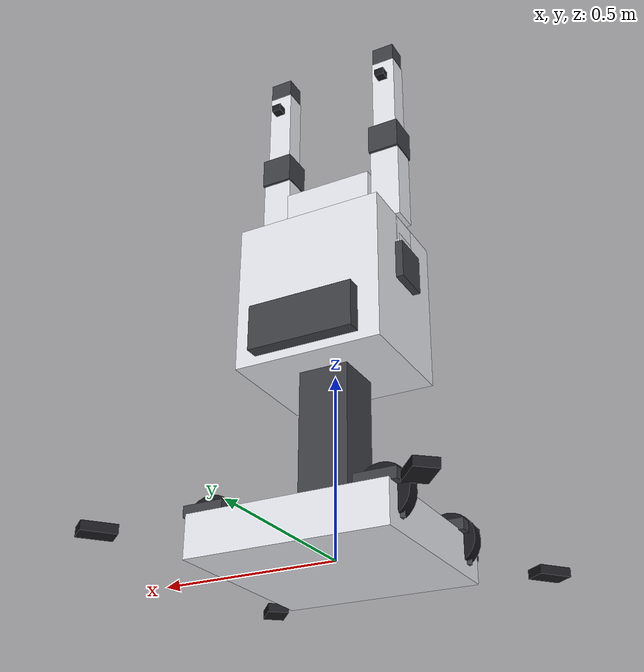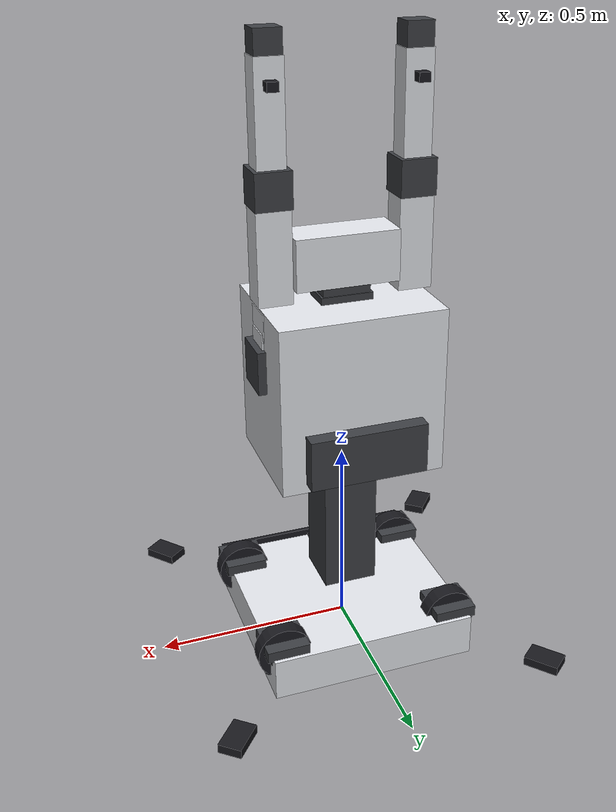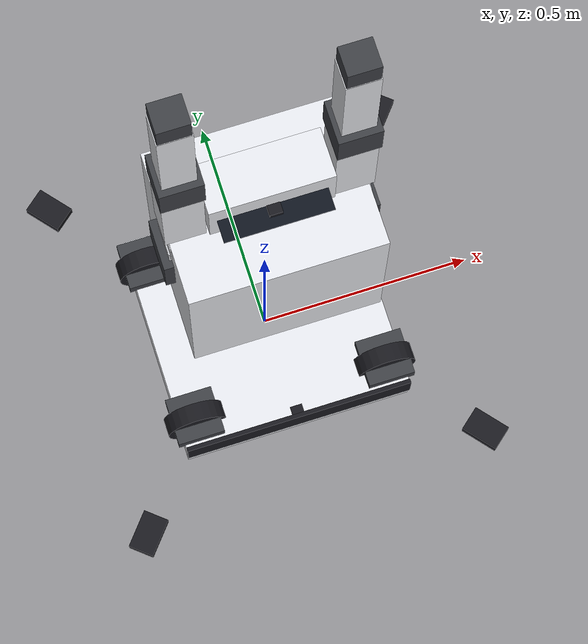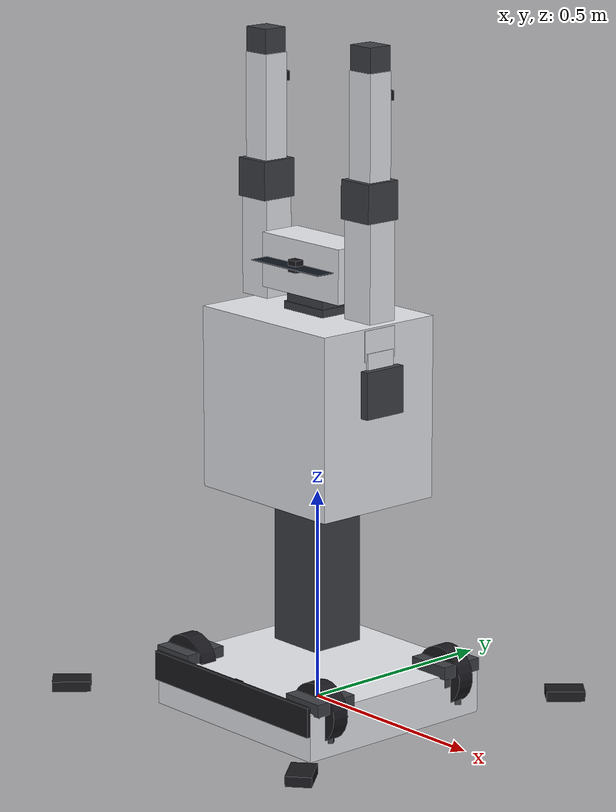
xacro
<?xml version="1.0"?>
<robot xmlns:xacro="http://www.ros.org/wiki/xacro" name="workbench_revision_d">

  <!-- ====================================================== swap-surface args -->
  <xacro:arg name="sim_gz" default="false"/>
  <xacro:arg name="controllers_yaml" default="revision_d_controllers.yaml"/>
  <xacro:arg name="stabilizers_deployed" default="false"/>
  <xacro:arg name="lift_extension" default="0.0"/>
  <xacro:arg name="ros2_control_xacro" default="revision_d_ros2_control.xacro"/>
  <xacro:arg name="sensors" default="false"/>

  <!-- Args are referenced as $(arg ...) and are not in scope as bare names, so
       the boolean the conditional needs is bound once here. -->
  <xacro:property name="sim_gz" value="$(arg sim_gz)"/>
  <xacro:property name="sensors" value="$(arg sensors)"/>

  <!-- ============================================== design-spec.json anchors -->
  <!-- hardware/mechanical/design-spec.json, converted mm -> m. The comment on
       each line is the JSON pointer the number comes from. -->

  <!-- chassis {width, depth, thickness}, ground_clearance -->
  <xacro:property name="chassis_x"        value="0.540"/>
  <xacro:property name="chassis_y"        value="0.520"/>
  <xacro:property name="chassis_plate"    value="0.006"/>
  <xacro:property name="ground_clearance" value="0.028"/>
  <!-- coordinate_system.base_top_z_mm = 140 -->
  <xacro:property name="base_top_z"       value="0.140"/>

  <!-- chassis {wheelbase, track, wheel_diameter_mm, wheel_width_mm, drive_module_count} -->
  <xacro:property name="wheelbase"        value="0.390"/>
  <xacro:property name="track"            value="0.460"/>
  <xacro:property name="wheel_radius"     value="0.070"/>
  <xacro:property name="wheel_width"      value="0.042"/>
  <!-- Four steer-drive modules, so the four corners are the module positions. -->
  <xacro:property name="module_x"         value="${track / 2.0}"/>
  <xacro:property name="module_y"         value="${wheelbase / 2.0}"/>
  <xacro:property name="steer_drop"       value="0.020"/>
  <xacro:property name="wheel_drop"       value="0.005"/>
  <xacro:property name="module_mount_z"
                value="${wheel_radius - ground_clearance + steer_drop + wheel_drop}"/>

  <!-- stability_analysis.support_polygons.stabilized.vertices_mm = +/-410 -->
  <xacro:property name="stabilized_half"  value="0.410"/>
  <!-- Derived stroke from the corner mount to the documented vertex. One number
       instead of four so the deployed pad lands on the documented polygon. -->
  <xacro:property name="stabilizer_reach_x" value="${stabilized_half - module_x}"/>
  <xacro:property name="stabilizer_reach_y" value="${stabilized_half - module_y}"/>
  <xacro:property name="stabilizer_stroke"
                value="${(stabilizer_reach_x**2 + stabilizer_reach_y**2) ** 0.5}"/>
  <xacro:property name="stabilizer_pad"   value="0.090"/>

  <!-- lifting_platform {travel, minimum_shoulder_height, maximum_shoulder_height} -->
  <xacro:property name="lift_travel"      value="0.350"/>
  <xacro:property name="shoulder_min_z"   value="0.780"/>
  <xacro:property name="shoulder_max_z"   value="1.130"/>

  <!-- coordinate_system.torso_bottom_stowed_z_mm = 500 -->
  <xacro:property name="torso_bottom_z"   value="0.500"/>
  <!-- torso {width, depth, height} -->
  <xacro:property name="torso_x"          value="0.420"/>
  <xacro:property name="torso_y"          value="0.330"/>
  <xacro:property name="torso_z"          value="0.430"/>

  <!-- coordinate_system.head_top_stowed_z_mm = 1100 -->
  <xacro:property name="head_top_stowed_z" value="1.100"/>
  <!-- head {height} -->
  <xacro:property name="head_z"            value="0.128"/>
  <xacro:property name="head_x"            value="0.260"/>
  <xacro:property name="head_y"            value="0.105"/>
  <xacro:property name="neck_standoff"
                value="${head_top_stowed_z - head_z - (torso_bottom_z + torso_z)}"/>
  <!-- head {pan_deg, tilt_deg} -->
  <xacro:property name="neck_pan_limit"    value="${radians(80.0)}"/>
  <xacro:property name="neck_tilt_limit"   value="${radians(3.0)}"/>

  <!-- shoulder_mounts.center_spacing_mm = 352 -->
  <xacro:property name="shoulder_spacing" value="0.352"/>

  <!-- manipulator {reach_mm, links_mm, joints} -->
  <xacro:property name="arm_reach"        value="0.720"/>
  <xacro:property name="upper_arm_length" value="0.275"/>
  <xacro:property name="forearm_length"   value="0.245"/>
  <xacro:property name="wrist_stack"      value="0.115"/>
  <xacro:property name="shoulder_yoke"    value="0.110"/>
  <xacro:property name="elbow_block"      value="0.090"/>

  <!-- torso.tool_dock_slots = 3 -->
  <xacro:property name="tool_dock_slots"  value="3"/>
  <xacro:property name="tool_dock_pitch"  value="0.090"/>

  <!-- ============================================================== materials -->
  <material name="rd_shell">  <color rgba="0.90 0.91 0.93 1.0"/></material>
  <material name="rd_graphite"><color rgba="0.24 0.25 0.27 1.0"/></material>
  <material name="rd_dark">   <color rgba="0.10 0.10 0.12 1.0"/></material>
  <material name="rd_glass">  <color rgba="0.06 0.08 0.12 1.0"/></material>

  <!-- =============================================================== macros -->
  <!-- Inertia for a solid box about its centre, written out rather than
       approximated: a wrong tensor makes contact behaviour subtly wrong and
       then tuning chases the wrong parameter. -->
  <xacro:macro name="rd_box_inertia" params="m x y z">
    <inertial>
      <mass value="${m}"/>
      <inertia
        ixx="${m * (y*y + z*z) / 12.0}" ixy="0.0" ixz="0.0"
        iyy="${m * (x*x + z*z) / 12.0}" iyz="0.0"
        izz="${m * (x*x + y*y) / 12.0}"/>
    </inertial>
  </xacro:macro>

  <!-- Solid cylinder whose axis is the link's local Z. -->
  <xacro:macro name="rd_cylinder_inertia" params="m r h">
    <inertial>
      <mass value="${m}"/>
      <inertia
        ixx="${m * (3.0*r*r + h*h) / 12.0}" ixy="0.0" ixz="0.0"
        iyy="${m * (3.0*r*r + h*h) / 12.0}" iyz="0.0"
        izz="${m * r*r / 2.0}"/>
    </inertial>
  </xacro:macro>

  <xacro:macro name="rd_box_link" params="name x y z mat mass">
    <link name="${name}">
      <visual>
        <geometry><box size="${x} ${y} ${z}"/></geometry>
        <material name="${mat}"/>
      </visual>
      <collision>
        <geometry><box size="${x} ${y} ${z}"/></geometry>
      </collision>
      <xacro:rd_box_inertia m="${mass}" x="${x}" y="${y}" z="${z}"/>
    </link>
  </xacro:macro>

  <!-- Visual + collision cylinder, axis along the link's local Z. -->
  <xacro:macro name="rd_cylinder_link" params="name r h mat mass">
    <link name="${name}">
      <visual>
        <geometry><cylinder radius="${r}" length="${h}"/></geometry>
        <material name="${mat}"/>
      </visual>
      <collision>
        <geometry><cylinder radius="${r}" length="${h}"/></geometry>
      </collision>
      <xacro:rd_cylinder_inertia m="${mass}" r="${r}" h="${h}"/>
    </link>
  </xacro:macro>

  <!-- REP-103 optical convention: z forward, x right, y down. Publishing from a
       body frame instead gives a silent 90 degree error that still renders. -->
  <xacro:macro name="rd_optical_frame" params="parent name">
    <link name="${name}"/>
    <joint name="${parent}_to_${name}" type="fixed">
      <parent link="${parent}"/>
      <child  link="${name}"/>
      <origin xyz="0 0 0" rpy="${radians(-90.0)} 0 ${radians(-90.0)}"/>
    </joint>
  </xacro:macro>

  <xacro:macro name="rd_camera" params="parent name xyz rpy">
    <xacro:rd_box_link name="${name}_body" x="0.028" y="0.028" z="0.022"
                       mat="rd_dark" mass="0.040"/>
    <joint name="${parent}_to_${name}_body" type="fixed">
      <parent link="${parent}"/>
      <child  link="${name}_body"/>
      <origin xyz="${xyz}" rpy="${rpy}"/>
    </joint>
    <xacro:rd_optical_frame parent="${name}_body" name="${name}_optical"/>
  </xacro:macro>

  <xacro:macro name="rd_seven_axis_arm" params="side sign">
    <xacro:property name="arm" value="arm_${side}"/>

    <!-- The yoke bolts into the upper torso side wall and into the
         lift-supported spine, never the cosmetic shell. -->
    <xacro:rd_box_link name="${arm}_shoulder_yoke" x="${shoulder_yoke}" y="${shoulder_yoke}"
                       z="${shoulder_yoke}" mat="rd_graphite" mass="2.20"/>
    <joint name="${arm}_mount" type="fixed">
      <parent link="lift_carriage"/>
      <child  link="${arm}_shoulder_yoke"/>
      <origin xyz="${sign * shoulder_spacing / 2.0} 0 0" rpy="0 0 0"/>
    </joint>

    <!-- J1 base_yaw, axis Z, limits_deg [-170, 170] -->
    <xacro:rd_box_link name="${arm}_link_1_base_yaw" x="0.100" y="0.100" z="0.086"
                       mat="rd_graphite" mass="2.60"/>
    <joint name="${arm}_joint_1_base_yaw" type="revolute">
      <parent link="${arm}_shoulder_yoke"/>
      <child  link="${arm}_link_1_base_yaw"/>
      <axis xyz="0 0 1"/>
      <!-- effort is the documented peak torque; the continuous rating is in README.md -->
      <limit effort="90.0" velocity="2.10" lower="${radians(-170.0)}" upper="${radians(170.0)}"/>
    </joint>

    <!-- J2 shoulder_pitch, axis Y, limits_deg [-90, 120] -->
    <xacro:rd_box_link name="${arm}_link_2_shoulder_pitch" x="0.078" y="0.078" z="0.070"
                       mat="rd_shell" mass="2.10"/>
    <joint name="${arm}_joint_2_shoulder_pitch" type="revolute">
      <parent link="${arm}_link_1_base_yaw"/>
      <child  link="${arm}_link_2_shoulder_pitch"/>
      <axis xyz="0 1 0"/>
      <origin xyz="0 0 0.058" rpy="0 0 0"/>
      <limit effort="130.0" velocity="2.10" lower="${radians(-90.0)}" upper="${radians(120.0)}"/>
    </joint>

    <!-- J3 shoulder_roll, axis X, limits_deg [-95, 95] -->
    <xacro:rd_box_link name="${arm}_link_3_shoulder_roll" x="0.072" y="0.090" z="0.072"
                       mat="rd_shell" mass="1.70"/>
    <joint name="${arm}_joint_3_shoulder_roll" type="revolute">
      <parent link="${arm}_link_2_shoulder_pitch"/>
      <child  link="${arm}_link_3_shoulder_roll"/>
      <axis xyz="1 0 0"/>
      <origin xyz="0 0 0.052" rpy="0 0 0"/>
      <limit effort="85.0" velocity="2.10" lower="${radians(-95.0)}" upper="${radians(95.0)}"/>
    </joint>

    <!-- J4 elbow_pitch, axis Y, limits_deg [-135, 10]. links_mm.upper_arm = 275
         is the distance this joint sits from the shoulder roll axis. -->
    <link name="${arm}_link_4_upper_arm">
      <visual>
        <origin xyz="0 0 ${upper_arm_length / 2.0}" rpy="0 0 0"/>
        <geometry><box size="0.086 0.074 ${upper_arm_length}"/></geometry>
        <material name="rd_shell"/>
      </visual>
      <collision>
        <origin xyz="0 0 ${upper_arm_length / 2.0}" rpy="0 0 0"/>
        <geometry><box size="0.086 0.074 ${upper_arm_length}"/></geometry>
      </collision>
      <xacro:rd_box_inertia m="1.90" x="0.086" y="0.074" z="${upper_arm_length}"/>
    </link>
    <joint name="${arm}_joint_4_elbow_pitch" type="revolute">
      <parent link="${arm}_link_3_shoulder_roll"/>
      <child  link="${arm}_link_4_upper_arm"/>
      <axis xyz="0 1 0"/>
      <origin xyz="0 0 0.050" rpy="0 0 0"/>
      <limit effort="70.0" velocity="2.60" lower="${radians(-135.0)}" upper="${radians(10.0)}"/>
    </joint>

    <!-- J5 forearm_roll, axis X. links_mm.forearm = 245 hangs off this joint. -->
    <link name="${arm}_link_5_elbow">
      <visual>
        <geometry><box size="${elbow_block} ${elbow_block} ${elbow_block}"/></geometry>
        <material name="rd_graphite"/>
      </visual>
      <collision>
        <geometry><box size="${elbow_block} ${elbow_block} ${elbow_block}"/></geometry>
      </collision>
      <xacro:rd_box_inertia m="1.10" x="${elbow_block}" y="${elbow_block}" z="${elbow_block}"/>
    </link>
    <joint name="${arm}_joint_5_forearm_roll" type="revolute">
      <parent link="${arm}_link_4_upper_arm"/>
      <child  link="${arm}_link_5_elbow"/>
      <axis xyz="1 0 0"/>
      <origin xyz="0 0 ${upper_arm_length}" rpy="0 0 0"/>
      <limit effort="30.0" velocity="3.20" lower="${radians(-180.0)}" upper="${radians(180.0)}"/>
    </joint>

    <!-- links_mm.forearm = 245 is the roll cuff to the wrist pitch axis. -->
    <link name="${arm}_link_6_forearm">
      <visual>
        <origin xyz="0 0 ${forearm_length / 2.0}" rpy="0 0 0"/>
        <geometry><box size="0.070 0.062 ${forearm_length}"/></geometry>
        <material name="rd_shell"/>
      </visual>
      <collision>
        <origin xyz="0 0 ${forearm_length / 2.0}" rpy="0 0 0"/>
        <geometry><box size="0.070 0.062 ${forearm_length}"/></geometry>
      </collision>
      <xacro:rd_box_inertia m="1.30" x="0.070" y="0.062" z="${forearm_length}"/>
    </link>
    <joint name="${arm}_joint_6_wrist_pitch" type="revolute">
      <parent link="${arm}_link_5_elbow"/>
      <child  link="${arm}_link_6_forearm"/>
      <axis xyz="0 1 0"/>
      <origin xyz="0 0 ${elbow_block / 2.0}" rpy="0 0 0"/>
      <limit effort="24.0" velocity="3.20" lower="${radians(-110.0)}" upper="${radians(110.0)}"/>
    </joint>

    <!-- J7 tool_roll, axis X. links_mm.wrist_stack = 115 is the compact
         pitch/tool-roll assembly between the forearm and the tool flange. -->
    <xacro:rd_box_link name="${arm}_link_7_wrist" x="0.066" y="0.060" z="${wrist_stack}"
                       mat="rd_graphite" mass="0.85"/>
    <joint name="${arm}_joint_7_tool_roll" type="revolute">
      <parent link="${arm}_link_6_forearm"/>
      <child  link="${arm}_link_7_wrist"/>
      <axis xyz="1 0 0"/>
      <origin xyz="0 0 ${forearm_length}" rpy="0 0 0"/>
      <limit effort="16.0" velocity="3.90" lower="${radians(-180.0)}" upper="${radians(180.0)}"/>
    </joint>

    <!-- Kinematic quick-change flange. tool0 is the frame a tool and a TCP
         offset hang from; it is not a grasp claim. -->
    <link name="${arm}_tool0"/>
    <joint name="${arm}_tool_flange" type="fixed">
      <parent link="${arm}_link_7_wrist"/>
      <child  link="${arm}_tool0"/>
      <origin xyz="0 0 ${wrist_stack}" rpy="0 0 0"/>
    </joint>

    <!-- Wrist camera: also the sensor whose optical frame an eye-in-hand
         detector publishes in. -->
    <xacro:rd_camera parent="${arm}_link_6_forearm" name="${arm}_wrist_camera"
                     xyz="0 0.045 ${forearm_length - 0.060}"
                     rpy="0 0 ${radians(-90.0)}"/>
  </xacro:macro>

  <!-- ============================================================== the tree -->

  <link name="map"/>
  <link name="odom"/>
  <joint name="map_to_odom" type="fixed">
    <parent link="map"/>
    <child  link="odom"/>
    <origin xyz="0 0 0" rpy="0 0 0"/>
  </joint>

  <link name="base_footprint"/>
  <joint name="odom_to_base_footprint" type="fixed">
    <parent link="odom"/>
    <child  link="base_footprint"/>
    <origin xyz="0 0 0" rpy="0 0 0"/>
  </joint>

  <!-- base_link sits on the chassis plate. Its top lands on
       coordinate_system.base_top_z_mm = 140. -->
  <xacro:property name="base_housing_z" value="${base_top_z - ground_clearance}"/>
  <xacro:rd_box_link name="base_link" x="${chassis_x}" y="${chassis_y}"
                     z="${base_housing_z}" mat="rd_shell" mass="16.00"/>
  <joint name="base_footprint_to_base_link" type="fixed">
    <parent link="base_footprint"/>
    <child  link="base_link"/>
    <origin xyz="0 0 ${ground_clearance}" rpy="0 0 0"/>
  </joint>

  <!-- Bumper ring: the impact absorber, also the lowest obstacle a contact test
       sees. impact.bumper_thickness = 10 mm. -->
  <xacro:rd_box_link name="bumper_front" x="${chassis_x}" y="0.010" z="0.070"
                     mat="rd_dark" mass="0.60"/>
  <joint name="base_link_to_bumper_front" type="fixed">
    <parent link="base_link"/>
    <child  link="bumper_front"/>
    <origin xyz="0 ${-chassis_y/2.0 - 0.005} 0.040" rpy="0 0 0"/>
  </joint>

  <!-- Base front camera for docking and floor-facing coverage. -->
  <xacro:rd_camera parent="base_link" name="base_camera"
                   xyz="0 ${-chassis_y/2.0 + 0.010} 0.052" rpy="${radians(90.0)} 0 0"/>

  <xacro:macro name="rd_steer_drive_module" params="name sx sy">
    <xacro:rd_box_link name="${name}_steer_mount" x="0.110" y="0.110" z="0.030"
                       mat="rd_graphite" mass="1.40"/>
    <joint name="base_link_to_${name}_steer_mount" type="fixed">
      <parent link="base_link"/>
      <child  link="${name}_steer_mount"/>
      <origin xyz="${sx * module_x} ${sy * module_y} ${module_mount_z}" rpy="0 0 0"/>
    </joint>

    <xacro:rd_box_link name="${name}_steer" x="0.080" y="0.080" z="0.045"
                       mat="rd_graphite" mass="1.10"/>
    <joint name="${name}_steering_joint" type="revolute">
      <parent link="${name}_steer_mount"/>
      <child  link="${name}_steer"/>
      <axis xyz="0 0 1"/>
      <origin xyz="0 0 ${-steer_drop}" rpy="0 0 0"/>
      <limit effort="40.0" velocity="3.00" lower="${radians(-180.0)}" upper="${radians(180.0)}"/>
    </joint>

    <xacro:rd_cylinder_link name="${name}_wheel" r="${wheel_radius}" h="${wheel_width}"
                            mat="rd_dark" mass="1.60"/>
    <joint name="${name}_drive_joint" type="revolute">
      <parent link="${name}_steer"/>
      <child  link="${name}_wheel"/>
      <axis xyz="0 1 0"/>
      <origin xyz="0 0 ${-wheel_drop}" rpy="${radians(90.0)} 0 0"/>
      <limit effort="220.0" velocity="17.14" lower="-1.7976891295541595e308" upper="1.7976891295541595e308"/>
    </joint>
  </xacro:macro>

  <xacro:rd_steer_drive_module name="drive_module_front_left" sx="-1" sy="-1"/>
  <xacro:rd_steer_drive_module name="drive_module_front_right" sx="1" sy="-1"/>
  <xacro:rd_steer_drive_module name="drive_module_rear_left" sx="-1" sy="1"/>
  <xacro:rd_steer_drive_module name="drive_module_rear_right" sx="1" sy="1"/>

  <xacro:macro name="rd_stabilizer" params="name sx sy">
    <xacro:property name="deploy_yaw"
                     value="${atan2(sy * stabilizer_reach_y, sx * stabilizer_reach_x)}"
                     scope="local"/>
    <xacro:rd_box_link name="${name}_arm" x="0.070" y="0.070" z="0.030"
                       mat="rd_graphite" mass="0.50"/>
    <joint name="base_link_to_${name}_arm" type="fixed">
      <parent link="base_link"/>
      <child  link="${name}_arm"/>
      <origin xyz="${sx * module_x} ${sy * module_y} ${-0.008}" rpy="0 0 ${deploy_yaw}"/>
    </joint>

    <xacro:rd_box_link name="${name}_pad" x="${stabilizer_pad}" y="0.060" z="0.024"
                       mat="rd_dark" mass="0.30"/>
    <joint name="${name}_deploy_joint" type="prismatic">
      <parent link="${name}_arm"/>
      <child  link="${name}_pad"/>
      <axis xyz="1 0 0"/>
      <origin xyz="${stabilizer_stroke} 0 0" rpy="0 0 0"/>
      <limit effort="900.0" velocity="0.20" lower="${-stabilizer_stroke}" upper="0.0"/>
    </joint>
  </xacro:macro>

  <!-- Corner signs follow design-spec's robot_base convention: x = robot right,
       y = robot rear. Front is -Y, left is -X. -->
  <xacro:rd_stabilizer name="stabilizer_front_left"  sx="-1" sy="-1"/>
  <xacro:rd_stabilizer name="stabilizer_front_right" sx="1"  sy="-1"/>
  <xacro:rd_stabilizer name="stabilizer_rear_left"   sx="-1" sy="1"/>
  <xacro:rd_stabilizer name="stabilizer_rear_right"  sx="1"  sy="1"/>

  <!-- ================================================================= lift -->
  <xacro:property name="lift_column" value="0.140"/>
  <xacro:property name="lift_column_h" value="${torso_bottom_z - base_top_z}"/>
  <xacro:rd_box_link name="lift_column" x="${lift_column}" y="${lift_column}" z="${lift_column_h}"
                     mat="rd_graphite" mass="3.20"/>
  <joint name="base_link_to_lift_column" type="fixed">
    <parent link="base_link"/>
    <child  link="lift_column"/>
    <origin xyz="0 0 ${base_top_z - ground_clearance + lift_column_h/2.0}" rpy="0 0 0"/>
  </joint>

  <!-- The carriage is the frame the shoulders, torso, head and tool dock hang
       from, so one joint moves the whole upper body. -->
  <xacro:rd_box_link name="lift_carriage" x="0.300" y="0.240" z="0.060"
                     mat="rd_graphite" mass="7.50"/>
  <joint name="lift_joint" type="prismatic">
    <parent link="base_link"/>
    <child  link="lift_carriage"/>
    <axis xyz="0 0 1"/>
    <origin xyz="0 0 ${shoulder_min_z - ground_clearance}" rpy="0 0 0"/>
    <limit effort="3000.0" velocity="0.25" lower="0.0" upper="${lift_travel}"/>
  </joint>

  <!-- ================================================================ torso -->
  <!-- The torso is bolted to the carriage partway up the spine, which is why the
       torso origin is below the carriage: torso_bottom_stowed_z = 500 while
       minimum_shoulder_height = 780. -->
  <xacro:rd_box_link name="torso" x="${torso_x}" y="${torso_y}" z="${torso_z}"
                     mat="rd_shell" mass="5.00"/>
  <joint name="lift_carriage_to_torso" type="fixed">
    <parent link="lift_carriage"/>
    <child  link="torso"/>
    <origin xyz="0 0 ${torso_bottom_z + torso_z/2.0 - shoulder_min_z}" rpy="0 0 0"/>
  </joint>

  <!-- The parcel bay is an opening in the torso front, not a robot arm's
       workspace. torso.parcel_bay_payload_kg = 5. -->
  <link name="parcel_bay"/>
  <joint name="torso_to_parcel_bay" type="fixed">
    <parent link="torso"/>
    <child  link="parcel_bay"/>
    <origin xyz="0 ${-torso_y/2.0} ${0.020}" rpy="0 0 0"/>
  </joint>

  <!-- Tool dock: three keyed slots. The dock is a place to park a tool, and the
       interface it exposes is kinematic_quick_change_with_mechanical_lock. -->
  <xacro:rd_box_link name="tool_dock" x="0.300" y="0.040" z="0.130"
                     mat="rd_graphite" mass="1.80"/>
  <joint name="torso_to_tool_dock" type="fixed">
    <parent link="torso"/>
    <child  link="tool_dock"/>
    <origin xyz="0 ${torso_y/2.0 + 0.020} ${-torso_z/2.0 + 0.090}" rpy="0 0 0"/>
  </joint>

  <xacro:macro name="rd_tool_dock_slot" params="index">
    <link name="tool_dock_slot_${index}"/>
    <joint name="tool_dock_to_slot_${index}" type="fixed">
      <parent link="tool_dock"/>
      <child  link="tool_dock_slot_${index}"/>
      <origin xyz="${(index - (tool_dock_slots + 1) / 2.0) * tool_dock_pitch} 0 0" rpy="0 0 0"/>
    </joint>
  </xacro:macro>

  <xacro:rd_tool_dock_slot index="1"/>
  <xacro:rd_tool_dock_slot index="2"/>
  <xacro:rd_tool_dock_slot index="3"/>

  <!-- =========================================================== neck / head -->
  <!-- The head hangs off the torso, never off an arm, and can be lifted
       vertically off its keyed register during service. -->
  <xacro:property name="neck_plate_z" value="0.024"/>
  <xacro:property name="neck_pedestal_h" value="${neck_standoff - neck_plate_z}"/>
  <xacro:rd_box_link name="neck_pedestal" x="0.132" y="0.086" z="${neck_pedestal_h}"
                     mat="rd_graphite" mass="0.90"/>
  <joint name="torso_to_neck_pedestal" type="fixed">
    <parent link="torso"/>
    <child  link="neck_pedestal"/>
    <origin xyz="0 0 ${torso_z/2.0 + neck_pedestal_h/2.0}" rpy="0 0 0"/>
  </joint>

  <!-- neck_yaw: head.pan_deg = 160 total, so +/-80. -->
  <xacro:rd_box_link name="neck_yaw" x="0.120" y="0.078" z="${neck_plate_z}"
                     mat="rd_graphite" mass="0.60"/>
  <joint name="neck_pan_joint" type="revolute">
    <parent link="neck_pedestal"/>
    <child  link="neck_yaw"/>
    <axis xyz="0 0 1"/>
    <origin xyz="0 0 ${neck_pedestal_h/2.0 + neck_plate_z/2.0}" rpy="0 0 0"/>
    <limit effort="18.0" velocity="1.60" lower="${-neck_pan_limit}" upper="${neck_pan_limit}"/>
  </joint>

  <!-- neck_pitch: head.tilt_deg = 6 total, so +/-3. -->
  <xacro:rd_box_link name="head_display" x="${head_x}" y="${head_y}" z="${head_z}"
                     mat="rd_shell" mass="1.50"/>
  <joint name="neck_tilt_joint" type="revolute">
    <parent link="neck_yaw"/>
    <child  link="head_display"/>
    <axis xyz="0 1 0"/>
    <origin xyz="0 0 ${neck_plate_z/2.0 + head_z/2.0}" rpy="0 0 0"/>
    <limit effort="12.0" velocity="1.60" lower="${-neck_tilt_limit}" upper="${neck_tilt_limit}"/>
  </joint>

  <!-- The smoked-glass expression window. A visual, not an obstacle: the head
       display box already carries the collision volume. -->
  <link name="head_window">
    <visual>
      <geometry><box size="0.228 0.092 0.002"/></geometry>
      <material name="rd_glass"/>
    </visual>
  </link>
  <joint name="head_display_to_window" type="fixed">
    <parent link="head_display"/>
    <child  link="head_window"/>
    <origin xyz="0 ${-head_y/2.0 - 0.001} 0.008" rpy="0 0 0"/>
  </joint>

  <xacro:rd_camera parent="head_display" name="head_camera"
                   xyz="0 ${-head_y/2.0 - 0.014} 0.008" rpy="${radians(90.0)} 0 0"/>

  <!-- ================================================================= arms -->
  <xacro:rd_seven_axis_arm side="left"  sign="-1"/>
  <xacro:rd_seven_axis_arm side="right" sign="1"/>

  <!-- ======================================================= gazebo / ros2_control -->
  <!-- Friction and contact parameters are the numbers physics tuning moves. They
       start plausible and are expected to change. -->
  <gazebo reference="base_link">
    <mu1>0.7</mu1>
    <mu2>0.7</mu2>
  </gazebo>

  <gazebo reference="drive_module_front_left_wheel">
    <mu1>1.1</mu1>
    <mu2>1.1</mu2>
    <kp>1e6</kp>
    <kd>1.0</kd>
  </gazebo>
  <gazebo reference="drive_module_front_right_wheel">
    <mu1>1.1</mu1>
    <mu2>1.1</mu2>
    <kp>1e6</kp>
    <kd>1.0</kd>
  </gazebo>
  <gazebo reference="drive_module_rear_left_wheel">
    <mu1>1.1</mu1>
    <mu2>1.1</mu2>
    <kp>1e6</kp>
    <kd>1.0</kd>
  </gazebo>
  <gazebo reference="drive_module_rear_right_wheel">
    <mu1>1.1</mu1>
    <mu2>1.1</mu2>
    <kp>1e6</kp>
    <kd>1.0</kd>
  </gazebo>

  <!-- The wheel tread is non-marking high-grip polyurethane, which is a real
       material choice and a real friction uncertainty. -->
  <gazebo reference="stabilizer_front_left_pad"><mu1>0.9</mu1><mu2>0.9</mu2></gazebo>
  <gazebo reference="stabilizer_front_right_pad"><mu1>0.9</mu1><mu2>0.9</mu2></gazebo>
  <gazebo reference="stabilizer_rear_left_pad"><mu1>0.9</mu1><mu2>0.9</mu2></gazebo>
  <gazebo reference="stabilizer_rear_right_pad"><mu1>0.9</mu1><mu2>0.9</mu2></gazebo>

  <!-- One RGB camera. 640x480 at 15 Hz is a fixture-sized stream, not a
       perception-performance claim. `always_on` is false so a subscriber decides
       whether frames are produced at all. -->
  <xacro:macro name="rd_gazebo_camera" params="reference name">
    <gazebo reference="${reference}">
      <sensor name="${name}" type="camera">
        <always_on>false</always_on>
        <update_rate>15</update_rate>
        <visualize>false</visualize>
        <camera name="${name}_sensor">
          <horizontal_fov>1.047</horizontal_fov>
          <image>
            <width>640</width>
            <height>480</height>
            <format>R8G8B8</format>
          </image>
          <clip>
            <near>0.05</near>
            <far>10.0</far>
          </clip>
          <noise>
            <type>gaussian</type>
            <mean>0.0</mean>
            <stddev>0.007</stddev>
          </noise>
        </camera>
        <plugin filename="gz-sim-sensors-system" name="gz::sim::systems::Sensors">
        </plugin>
      </sensor>
    </gazebo>
  </xacro:macro>

  <!-- One depth camera, for the eye-in-hand and floor-facing streams where depth
       is what the consumer actually needs. -->
  <xacro:macro name="rd_gazebo_depth_camera" params="reference name">
    <gazebo reference="${reference}">
      <sensor name="${name}" type="depth_camera">
        <always_on>false</always_on>
        <update_rate>10</update_rate>
        <visualize>false</visualize>
        <camera name="${name}_sensor">
          <horizontal_fov>1.047</horizontal_fov>
          <image>
            <width>640</width>
            <height>480</height>
          </image>
          <clip>
            <near>0.05</near>
            <far>10.0</far>
          </clip>
        </camera>
        <plugin filename="gz-sim-sensors-system" name="gz::sim::systems::Sensors"/>
      </sensor>
    </gazebo>
  </xacro:macro>

  <gazebo reference="base_link">
    <sensor name="base_imu" type="imu">
      <always_on>false</always_on>
      <update_rate>100</update_rate>
      <visualize>false</visualize>
      <imu>
        <!-- Covariances are fixture values, not a datasheet. A consumer that
             treats them as characterised noise is making a claim this file does
             not support. -->
        <angular_velocity>
          <x><noise type="gaussian"><mean>0</mean><stddev>0.0002</stddev></noise></x>
          <y><noise type="gaussian"><mean>0</mean><stddev>0.0002</stddev></noise></y>
          <z><noise type="gaussian"><mean>0</mean><stddev>0.0002</stddev></noise></z>
        </angular_velocity>
        <linear_acceleration>
          <x><noise type="gaussian"><mean>0</mean><stddev>0.0017</stddev></noise></x>
          <y><noise type="gaussian"><mean>0</mean><stddev>0.0017</stddev></noise></y>
          <z><noise type="gaussian"><mean>0</mean><stddev>0.0017</stddev></noise></z>
        </linear_acceleration>
      </imu>
      <plugin filename="gz-sim-imu-system" name="gz::sim::systems::Imu"/>
    </sensor>
  </gazebo>

  <gazebo reference="bumper_front">
    <sensor name="bumper_front_contact" type="contact">
      <always_on>true</always_on>
      <update_rate>50</update_rate>
      <contact>
        <collision>bumper_front</collision>
      </contact>
      <plugin filename="gz-sim-contact-system" name="gz::sim::systems::Contact"/>
    </sensor>
  </gazebo>

  <xacro:if value="${sensors}">
    <xacro:rd_gazebo_camera reference="base_camera_body" name="base_camera_image"/>
    <xacro:rd_gazebo_depth_camera reference="head_camera_body" name="head_camera_depth"/>
    <xacro:rd_gazebo_camera reference="arm_left_wrist_camera_body" name="arm_left_wrist_camera_image"/>
    <xacro:rd_gazebo_camera reference="arm_right_wrist_camera_body" name="arm_right_wrist_camera_image"/>
  </xacro:if>

  <gazebo>
    <self_collide>false</self_collide>
  </gazebo>

  <xacro:if value="${sim_gz}">
    <xacro:include filename="${ros2_control_xacro}"/>
    <xacro:revision_d_ros2_control controllers_yaml="${controllers_yaml}"/>
  </xacro:if>

</robot>
